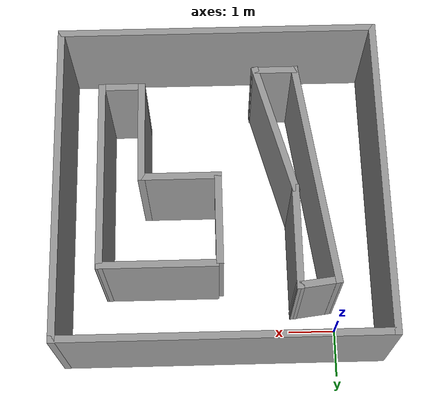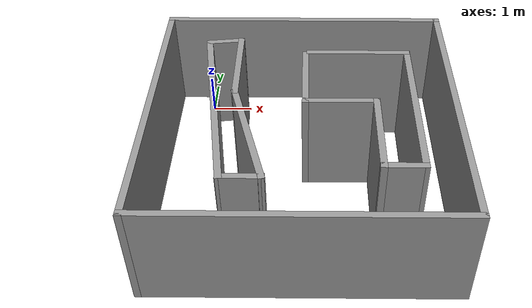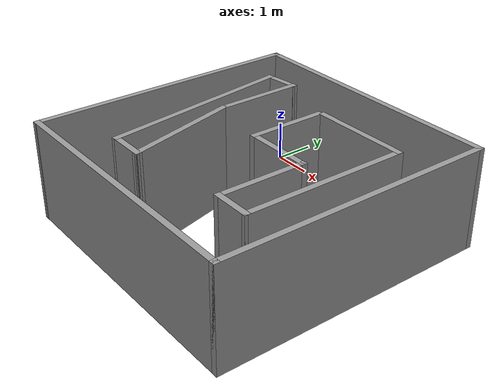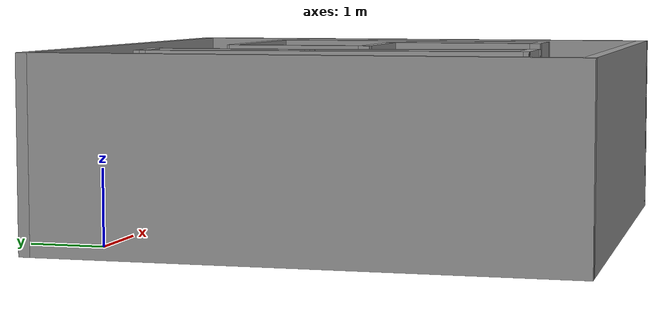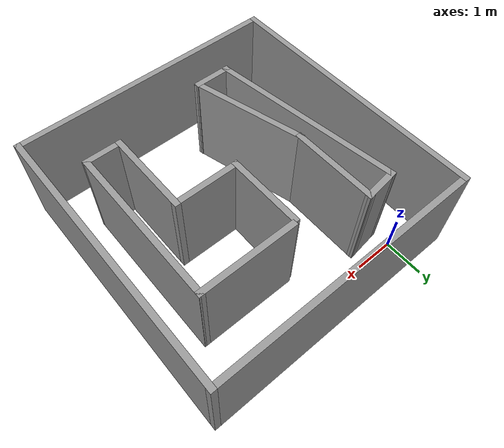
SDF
<?xml version='1.0'?>
<sdf version='1.7'>
  <model name='like_maze_map'>
    <pose>2.44401 -2.82329 0 0 -0 0</pose>
    <link name='Wall_10'>
      <collision name='Wall_10_Collision'>
        <geometry>
          <box>
            <size>7 0.15 2.5</size>
          </box>
        </geometry>
        <pose>0 0 1.25 0 -0 0</pose>
      </collision>
      <visual name='Wall_10_Visual'>
        <pose>0 0 1.25 0 -0 0</pose>
        <geometry>
          <box>
            <size>7 0.15 2.5</size>
          </box>
        </geometry>
        <material>
          <script>
            <uri>file://media/materials/scripts/gazebo.material</uri>
            <name>Gazebo/Grey</name>
          </script>
          <ambient>1 1 1 1</ambient>
        </material>
        <meta>
          <layer>0</layer>
        </meta>
      </visual>
      <pose>-3.425 0 0 0 -0 -1.5708</pose>
    </link>
    <link name='Wall_11'>
      <collision name='Wall_11_Collision'>
        <geometry>
          <box>
            <size>7 0.15 2.5</size>
          </box>
        </geometry>
        <pose>0 0 1.25 0 -0 0</pose>
      </collision>
      <visual name='Wall_11_Visual'>
        <pose>0 0 1.25 0 -0 0</pose>
        <geometry>
          <box>
            <size>7 0.15 2.5</size>
          </box>
        </geometry>
        <material>
          <script>
            <uri>file://media/materials/scripts/gazebo.material</uri>
            <name>Gazebo/Grey</name>
          </script>
          <ambient>1 1 1 1</ambient>
        </material>
        <meta>
          <layer>0</layer>
        </meta>
      </visual>
      <pose>0 -3.425 0 0 -0 0</pose>
    </link>
    <link name='Wall_12'>
      <collision name='Wall_12_Collision'>
        <geometry>
          <box>
            <size>7 0.15 2.5</size>
          </box>
        </geometry>
        <pose>0 0 1.25 0 -0 0</pose>
      </collision>
      <visual name='Wall_12_Visual'>
        <pose>0 0 1.25 0 -0 0</pose>
        <geometry>
          <box>
            <size>7 0.15 2.5</size>
          </box>
        </geometry>
        <material>
          <script>
            <uri>file://media/materials/scripts/gazebo.material</uri>
            <name>Gazebo/Grey</name>
          </script>
          <ambient>1 1 1 1</ambient>
        </material>
        <meta>
          <layer>0</layer>
        </meta>
      </visual>
      <pose>3.425 0 0 0 -0 1.5708</pose>
    </link>
    <link name='Wall_13'>
      <collision name='Wall_13_Collision'>
        <geometry>
          <box>
            <size>7 0.15 2.5</size>
          </box>
        </geometry>
        <pose>0 0 1.25 0 -0 0</pose>
      </collision>
      <visual name='Wall_13_Visual'>
        <pose>0 0 1.25 0 -0 0</pose>
        <geometry>
          <box>
            <size>7 0.15 2.5</size>
          </box>
        </geometry>
        <material>
          <script>
            <uri>file://media/materials/scripts/gazebo.material</uri>
            <name>Gazebo/Grey</name>
          </script>
          <ambient>1 1 1 1</ambient>
        </material>
        <meta>
          <layer>0</layer>
        </meta>
      </visual>
      <pose>0 3.425 0 0 -0 3.14159</pose>
    </link>
    <link name='Wall_29'>
      <collision name='Wall_29_Collision'>
        <geometry>
          <box>
            <size>4.95353 0.15 2.5</size>
          </box>
        </geometry>
        <pose>0 0 1.25 0 -0 0</pose>
      </collision>
      <visual name='Wall_29_Visual'>
        <pose>0 0 1.25 0 -0 0</pose>
        <geometry>
          <box>
            <size>4.95353 0.15 2.5</size>
          </box>
        </geometry>
        <material>
          <script>
            <uri>file://media/materials/scripts/gazebo.material</uri>
            <name>Gazebo/Grey</name>
          </script>
          <ambient>1 1 1 1</ambient>
        </material>
        <meta>
          <layer>0</layer>
        </meta>
      </visual>
      <pose>-1.99286 -0.035226 0 0 -0 -1.43193</pose>
    </link>
    <link name='Wall_31'>
      <collision name='Wall_31_Collision'>
        <geometry>
          <box>
            <size>1 0.15 2.5</size>
          </box>
        </geometry>
        <pose>0 0 1.25 0 -0 0</pose>
      </collision>
      <visual name='Wall_31_Visual'>
        <pose>0 0 1.25 0 -0 0</pose>
        <geometry>
          <box>
            <size>1 0.15 2.5</size>
          </box>
        </geometry>
        <material>
          <script>
            <uri>file://media/materials/scripts/gazebo.material</uri>
            <name>Gazebo/Grey</name>
          </script>
          <ambient>1 1 1 1</ambient>
        </material>
        <meta>
          <layer>0</layer>
        </meta>
      </visual>
      <pose>-1.23547 -2.41339 0 0 -0 0</pose>
    </link>
    <link name='Wall_32'>
      <collision name='Wall_32_Collision'>
        <geometry>
          <box>
            <size>3 0.15 2.5</size>
          </box>
        </geometry>
        <pose>0 0 1.25 0 -0 0</pose>
      </collision>
      <visual name='Wall_32_Visual'>
        <pose>0 0 1.25 0 -0 0</pose>
        <geometry>
          <box>
            <size>3 0.15 2.5</size>
          </box>
        </geometry>
        <material>
          <script>
            <uri>file://media/materials/scripts/gazebo.material</uri>
            <name>Gazebo/Grey</name>
          </script>
          <ambient>1 1 1 1</ambient>
        </material>
        <meta>
          <layer>0</layer>
        </meta>
      </visual>
      <pose>-1.17928 -1.03695 0 0 -0 1.8326</pose>
    </link>
    <link name='Wall_33'>
      <collision name='Wall_33_Collision'>
        <geometry>
          <box>
            <size>2.25 0.15 2.5</size>
          </box>
        </geometry>
        <pose>0 0 1.25 0 -0 0</pose>
      </collision>
      <visual name='Wall_33_Visual'>
        <pose>0 0 1.25 0 -0 0</pose>
        <geometry>
          <box>
            <size>2.25 0.15 2.5</size>
          </box>
        </geometry>
        <material>
          <script>
            <uri>file://media/materials/scripts/gazebo.material</uri>
            <name>Gazebo/Grey</name>
          </script>
          <ambient>1 1 1 1</ambient>
        </material>
        <meta>
          <layer>0</layer>
        </meta>
      </visual>
      <pose>-1.5481 1.38949 0 0 -0 1.5708</pose>
    </link>
    <link name='Wall_34'>
      <collision name='Wall_34_Collision'>
        <geometry>
          <box>
            <size>0.933131 0.15 2.5</size>
          </box>
        </geometry>
        <pose>0 0 1.25 0 -0 0</pose>
      </collision>
      <visual name='Wall_34_Visual'>
        <pose>0 0 1.25 0 -0 0</pose>
        <geometry>
          <box>
            <size>0.933131 0.15 2.5</size>
          </box>
        </geometry>
        <material>
          <script>
            <uri>file://media/materials/scripts/gazebo.material</uri>
            <name>Gazebo/Grey</name>
          </script>
          <ambient>1 1 1 1</ambient>
        </material>
        <meta>
          <layer>0</layer>
        </meta>
      </visual>
      <pose>-1.93668 2.39122 0 0 -0 -3.01799</pose>
    </link>
    <link name='Wall_36'>
      <collision name='Wall_36_Collision'>
        <geometry>
          <box>
            <size>2.5 0.15 2.5</size>
          </box>
        </geometry>
        <pose>0 0 1.25 0 -0 0</pose>
      </collision>
      <visual name='Wall_36_Visual'>
        <pose>0 0 1.25 0 -0 0</pose>
        <geometry>
          <box>
            <size>2.5 0.15 2.5</size>
          </box>
        </geometry>
        <material>
          <script>
            <uri>file://media/materials/scripts/gazebo.material</uri>
            <name>Gazebo/Grey</name>
          </script>
          <ambient>1 1 1 1</ambient>
        </material>
        <meta>
          <layer>0</layer>
        </meta>
      </visual>
      <pose>1.33102 1.93173 0 0 -0 0</pose>
    </link>
    <link name='Wall_37'>
      <collision name='Wall_37_Collision'>
        <geometry>
          <box>
            <size>4.15742 0.15 2.5</size>
          </box>
        </geometry>
        <pose>0 0 1.25 0 -0 0</pose>
      </collision>
      <visual name='Wall_37_Visual'>
        <pose>0 0 1.25 0 -0 0</pose>
        <geometry>
          <box>
            <size>4.15742 0.15 2.5</size>
          </box>
        </geometry>
        <material>
          <script>
            <uri>file://media/materials/scripts/gazebo.material</uri>
            <name>Gazebo/Grey</name>
          </script>
          <ambient>1 1 1 1</ambient>
        </material>
        <meta>
          <layer>0</layer>
        </meta>
      </visual>
      <pose>2.50945 -0.07193 0 0 -0 -1.57251</pose>
    </link>
    <link name='Wall_49'>
      <collision name='Wall_49_Collision'>
        <geometry>
          <box>
            <size>1 0.15 2.5</size>
          </box>
        </geometry>
        <pose>0 0 1.25 0 -0 0</pose>
      </collision>
      <visual name='Wall_49_Visual'>
        <pose>0 0 1.25 0 -0 0</pose>
        <geometry>
          <box>
            <size>1 0.15 2.5</size>
          </box>
        </geometry>
        <material>
          <script>
            <uri>file://media/materials/scripts/gazebo.material</uri>
            <name>Gazebo/Grey</name>
          </script>
          <ambient>1 1 1 1</ambient>
        </material>
        <meta>
          <layer>0</layer>
        </meta>
      </visual>
      <pose>2.08102 -2.07559 0 0 -0 3.14159</pose>
    </link>
    <link name='Wall_50'>
      <collision name='Wall_50_Collision'>
        <geometry>
          <box>
            <size>2.25 0.15 2.5</size>
          </box>
        </geometry>
        <pose>0 0 1.25 0 -0 0</pose>
      </collision>
      <visual name='Wall_50_Visual'>
        <pose>0 0 1.25 0 -0 0</pose>
        <geometry>
          <box>
            <size>2.25 0.15 2.5</size>
          </box>
        </geometry>
        <material>
          <script>
            <uri>file://media/materials/scripts/gazebo.material</uri>
            <name>Gazebo/Grey</name>
          </script>
          <ambient>1 1 1 1</ambient>
        </material>
        <meta>
          <layer>0</layer>
        </meta>
      </visual>
      <pose>1.65602 -1.02559 0 0 -0 1.5708</pose>
    </link>
    <link name='Wall_51'>
      <collision name='Wall_51_Collision'>
        <geometry>
          <box>
            <size>1.75 0.15 2.5</size>
          </box>
        </geometry>
        <pose>0 0 1.25 0 -0 0</pose>
      </collision>
      <visual name='Wall_51_Visual'>
        <pose>0 0 1.25 0 -0 0</pose>
        <geometry>
          <box>
            <size>1.75 0.15 2.5</size>
          </box>
        </geometry>
        <material>
          <script>
            <uri>file://media/materials/scripts/gazebo.material</uri>
            <name>Gazebo/Grey</name>
          </script>
          <ambient>1 1 1 1</ambient>
        </material>
        <meta>
          <layer>0</layer>
        </meta>
      </visual>
      <pose>0.85602 0.024408 0 0 -0 3.14159</pose>
    </link>
    <link name='Wall_52'>
      <collision name='Wall_52_Collision'>
        <geometry>
          <box>
            <size>2 0.15 2.5</size>
          </box>
        </geometry>
        <pose>0 0 1.25 0 -0 0</pose>
      </collision>
      <visual name='Wall_52_Visual'>
        <pose>0 0 1.25 0 -0 0</pose>
        <geometry>
          <box>
            <size>2 0.15 2.5</size>
          </box>
        </geometry>
        <material>
          <script>
            <uri>file://media/materials/scripts/gazebo.material</uri>
            <name>Gazebo/Grey</name>
          </script>
          <ambient>1 1 1 1</ambient>
        </material>
        <meta>
          <layer>0</layer>
        </meta>
      </visual>
      <pose>0.05602 0.949408 0 0 -0 1.5708</pose>
    </link>
    <static>1</static>
  </model>
</sdf>
